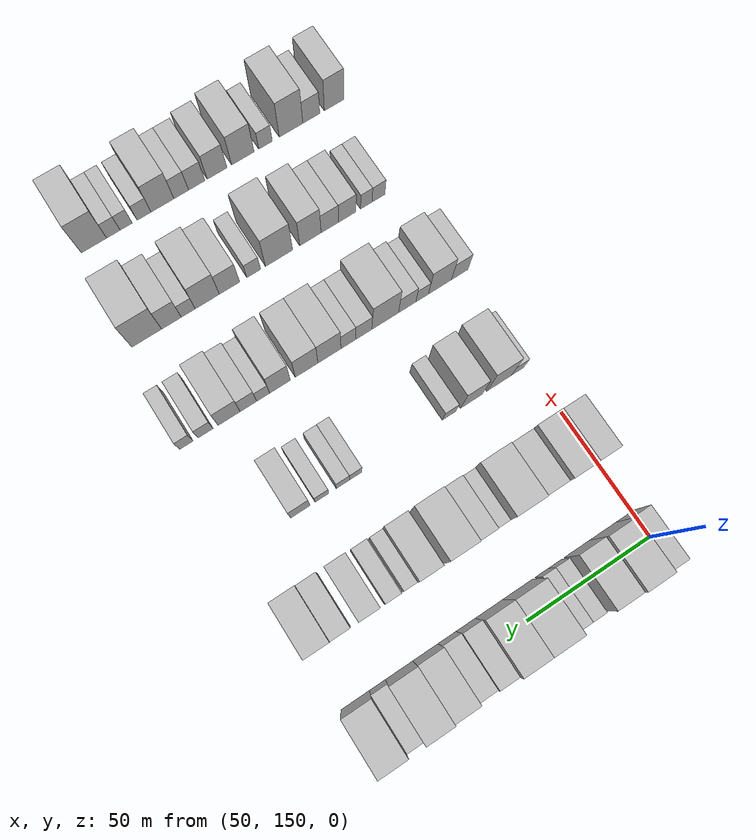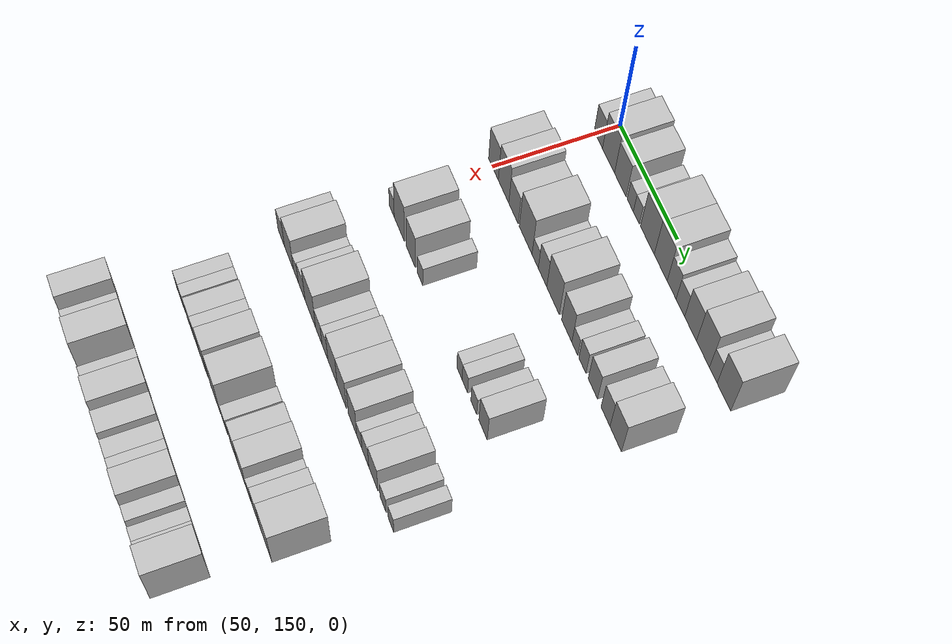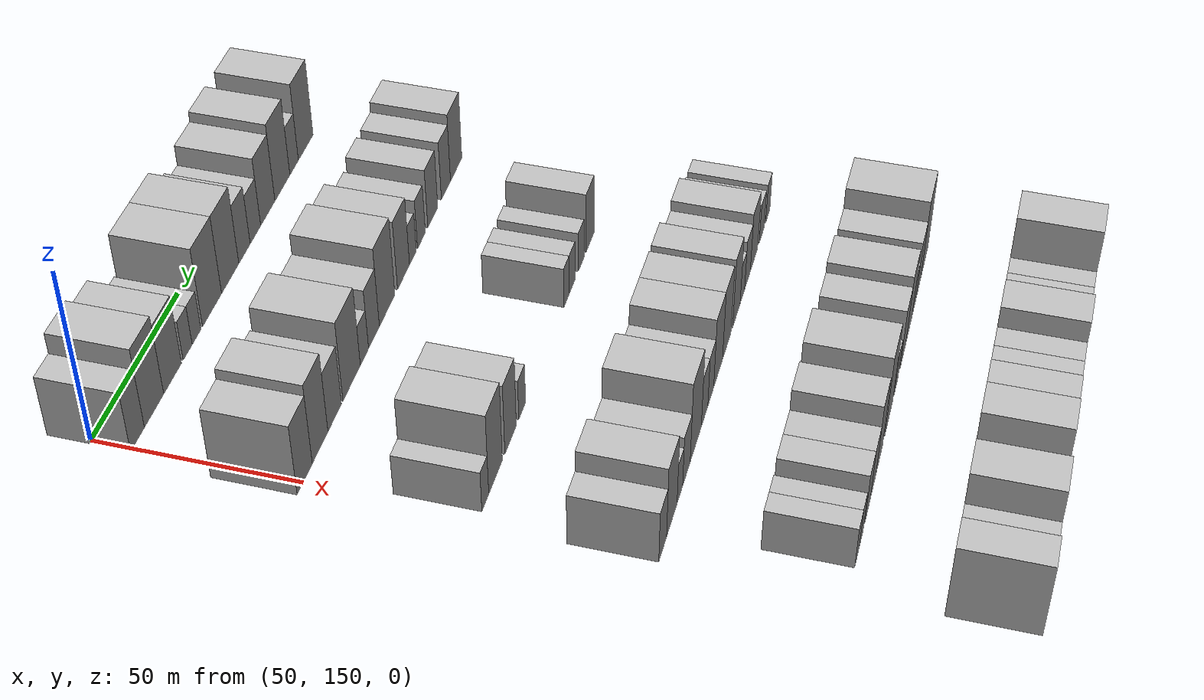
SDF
<sdf version="1.6">
 <world name="default">
  <model name="building_84">
   <static>1</static>
   <pose>50.0000 152.7895 0 0.000000 0.000000 0.000000</pose>
   <link name="link">
    <pose>0 0 9.00 0 0 0</pose>
    <collision name="collision"><geometry><box><size>20.0000 7.6728 18.0000</size></box></geometry></collision>
    <visual name="visual">
     <cast_shadows>0</cast_shadows>
     <geometry><box><size>20.0000 7.6728 18.0000</size></box></geometry>
     <material>
      <script>
       <uri>model://HANNAS_wall/materials/scripts</uri>
       <uri>model://HANNAS_wall/materials/textures</uri>
       <name>vrc/HANNAS_wall</name>
      </script>
     </material>
    </visual>
   </link>
  </model>
  <model name="building_85">
   <static>1</static>
   <pose>50.0000 162.0915 0 0.000000 0.000000 0.000000</pose>
   <link name="link">
    <pose>0 0 12.00 0 0 0</pose>
    <collision name="collision"><geometry><box><size>20.0000 10.9312 24.0000</size></box></geometry></collision>
    <visual name="visual">
     <cast_shadows>0</cast_shadows>
     <geometry><box><size>20.0000 10.9312 24.0000</size></box></geometry>
     <material>
      <script>
       <uri>model://HANNAS_wall/materials/scripts</uri>
       <uri>model://HANNAS_wall/materials/textures</uri>
       <name>vrc/HANNAS_wall</name>
      </script>
     </material>
    </visual>
   </link>
  </model>
  <model name="building_86">
   <static>1</static>
   <pose>50.0000 172.7237 0 0.000000 0.000000 0.000000</pose>
   <link name="link">
    <pose>0 0 10.50 0 0 0</pose>
    <collision name="collision"><geometry><box><size>20.0000 10.3332 21.0000</size></box></geometry></collision>
    <visual name="visual">
     <cast_shadows>0</cast_shadows>
     <geometry><box><size>20.0000 10.3332 21.0000</size></box></geometry>
     <material>
      <script>
       <uri>model://HANNAS_wall/materials/scripts</uri>
       <uri>model://HANNAS_wall/materials/textures</uri>
       <name>vrc/HANNAS_wall</name>
      </script>
     </material>
    </visual>
   </link>
  </model>
  <model name="building_87">
   <static>1</static>
   <pose>50.0000 181.6110 0 0.000000 0.000000 0.000000</pose>
   <link name="link">
    <pose>0 0 6.00 0 0 0</pose>
    <collision name="collision"><geometry><box><size>20.0000 5.4416 12.0000</size></box></geometry></collision>
    <visual name="visual">
     <cast_shadows>0</cast_shadows>
     <geometry><box><size>20.0000 5.4416 12.0000</size></box></geometry>
     <material>
      <script>
       <uri>model://HANNAS_wall/materials/scripts</uri>
       <uri>model://HANNAS_wall/materials/textures</uri>
       <name>vrc/HANNAS_wall</name>
      </script>
     </material>
    </visual>
   </link>
  </model>
  <model name="building_88">
   <static>1</static>
   <pose>50.0000 186.9687 0 0.000000 0.000000 0.000000</pose>
   <link name="link">
    <pose>0 0 6.00 0 0 0</pose>
    <collision name="collision"><geometry><box><size>20.0000 5.2737 12.0000</size></box></geometry></collision>
    <visual name="visual">
     <cast_shadows>0</cast_shadows>
     <geometry><box><size>20.0000 5.2737 12.0000</size></box></geometry>
     <material>
      <script>
       <uri>model://HANNAS_wall/materials/scripts</uri>
       <uri>model://HANNAS_wall/materials/textures</uri>
       <name>vrc/HANNAS_wall</name>
      </script>
     </material>
    </visual>
   </link>
  </model>
  <model name="building_89">
   <static>1</static>
   <pose>50.0000 196.5777 0 0.000000 0.000000 0.000000</pose>
   <link name="link">
    <pose>0 0 12.00 0 0 0</pose>
    <collision name="collision"><geometry><box><size>20.0000 11.9444 24.0000</size></box></geometry></collision>
    <visual name="visual">
     <cast_shadows>0</cast_shadows>
     <geometry><box><size>20.0000 11.9444 24.0000</size></box></geometry>
     <material>
      <script>
       <uri>model://HANNAS_wall/materials/scripts</uri>
       <uri>model://HANNAS_wall/materials/textures</uri>
       <name>vrc/HANNAS_wall</name>
      </script>
     </material>
    </visual>
   </link>
  </model>
  <model name="building_90">
   <static>1</static>
   <pose>50.0000 208.0871 0 0.000000 0.000000 0.000000</pose>
   <link name="link">
    <pose>0 0 12.00 0 0 0</pose>
    <collision name="collision"><geometry><box><size>20.0000 11.0743 24.0000</size></box></geometry></collision>
    <visual name="visual">
     <cast_shadows>0</cast_shadows>
     <geometry><box><size>20.0000 11.0743 24.0000</size></box></geometry>
     <material>
      <script>
       <uri>model://HANNAS_wall/materials/scripts</uri>
       <uri>model://HANNAS_wall/materials/textures</uri>
       <name>vrc/HANNAS_wall</name>
      </script>
     </material>
    </visual>
   </link>
  </model>
  <model name="building_91">
   <static>1</static>
   <pose>50.0000 217.3788 0 0.000000 0.000000 0.000000</pose>
   <link name="link">
    <pose>0 0 9.00 0 0 0</pose>
    <collision name="collision"><geometry><box><size>20.0000 7.5092 18.0000</size></box></geometry></collision>
    <visual name="visual">
     <cast_shadows>0</cast_shadows>
     <geometry><box><size>20.0000 7.5092 18.0000</size></box></geometry>
     <material>
      <script>
       <uri>model://HANNAS_wall/materials/scripts</uri>
       <uri>model://HANNAS_wall/materials/textures</uri>
       <name>vrc/HANNAS_wall</name>
      </script>
     </material>
    </visual>
   </link>
  </model>
  <model name="building_92">
   <static>1</static>
   <pose>50.0000 224.6886 0 0.000000 0.000000 0.000000</pose>
   <link name="link">
    <pose>0 0 7.50 0 0 0</pose>
    <collision name="collision"><geometry><box><size>20.0000 7.1102 15.0000</size></box></geometry></collision>
    <visual name="visual">
     <cast_shadows>0</cast_shadows>
     <geometry><box><size>20.0000 7.1102 15.0000</size></box></geometry>
     <material>
      <script>
       <uri>model://HANNAS_wall/materials/scripts</uri>
       <uri>model://HANNAS_wall/materials/textures</uri>
       <name>vrc/HANNAS_wall</name>
      </script>
     </material>
    </visual>
   </link>
  </model>
  <model name="building_93">
   <static>1</static>
   <pose>50.0000 233.1291 0 0.000000 0.000000 0.000000</pose>
   <link name="link">
    <pose>0 0 10.50 0 0 0</pose>
    <collision name="collision"><geometry><box><size>20.0000 9.7709 21.0000</size></box></geometry></collision>
    <visual name="visual">
     <cast_shadows>0</cast_shadows>
     <geometry><box><size>20.0000 9.7709 21.0000</size></box></geometry>
     <material>
      <script>
       <uri>model://HANNAS_wall/materials/scripts</uri>
       <uri>model://HANNAS_wall/materials/textures</uri>
       <name>vrc/HANNAS_wall</name>
      </script>
     </material>
    </visual>
   </link>
  </model>
  <model name="building_94">
   <static>1</static>
   <pose>50.0000 243.3076 0 0.000000 0.000000 0.000000</pose>
   <link name="link">
    <pose>0 0 12.00 0 0 0</pose>
    <collision name="collision"><geometry><box><size>20.0000 10.5861 24.0000</size></box></geometry></collision>
    <visual name="visual">
     <cast_shadows>0</cast_shadows>
     <geometry><box><size>20.0000 10.5861 24.0000</size></box></geometry>
     <material>
      <script>
       <uri>model://HANNAS_wall/materials/scripts</uri>
       <uri>model://HANNAS_wall/materials/textures</uri>
       <name>vrc/HANNAS_wall</name>
      </script>
     </material>
    </visual>
   </link>
  </model>
  <model name="building_95">
   <static>1</static>
   <pose>50.0000 251.6671 0 0.000000 0.000000 0.000000</pose>
   <link name="link">
    <pose>0 0 7.50 0 0 0</pose>
    <collision name="collision"><geometry><box><size>20.0000 6.1329 15.0000</size></box></geometry></collision>
    <visual name="visual">
     <cast_shadows>0</cast_shadows>
     <geometry><box><size>20.0000 6.1329 15.0000</size></box></geometry>
     <material>
      <script>
       <uri>model://HANNAS_wall/materials/scripts</uri>
       <uri>model://HANNAS_wall/materials/textures</uri>
       <name>vrc/HANNAS_wall</name>
      </script>
     </material>
    </visual>
   </link>
  </model>
  <model name="building_96">
   <static>1</static>
   <pose>50.0000 260.1546 0 0.000000 0.000000 0.000000</pose>
   <link name="link">
    <pose>0 0 12.00 0 0 0</pose>
    <collision name="collision"><geometry><box><size>20.0000 10.8420 24.0000</size></box></geometry></collision>
    <visual name="visual">
     <cast_shadows>0</cast_shadows>
     <geometry><box><size>20.0000 10.8420 24.0000</size></box></geometry>
     <material>
      <script>
       <uri>model://HANNAS_wall/materials/scripts</uri>
       <uri>model://HANNAS_wall/materials/textures</uri>
       <name>vrc/HANNAS_wall</name>
      </script>
     </material>
    </visual>
   </link>
  </model>
  <model name="building_215">
   <static>1</static>
   <pose>90.0000 151.0080 0 0.000000 0.000000 0.000000</pose>
   <link name="link">
    <pose>0 0 10.50 0 0 0</pose>
    <collision name="collision"><geometry><box><size>20.0000 9.5151 21.0000</size></box></geometry></collision>
    <visual name="visual">
     <cast_shadows>0</cast_shadows>
     <geometry><box><size>20.0000 9.5151 21.0000</size></box></geometry>
     <material>
      <script>
       <uri>model://HANNAS_wall/materials/scripts</uri>
       <uri>model://HANNAS_wall/materials/textures</uri>
       <name>vrc/HANNAS_wall</name>
      </script>
     </material>
    </visual>
   </link>
  </model>
  <model name="building_216">
   <static>1</static>
   <pose>90.0000 160.8069 0 0.000000 0.000000 0.000000</pose>
   <link name="link">
    <pose>0 0 12.00 0 0 0</pose>
    <collision name="collision"><geometry><box><size>20.0000 10.0829 24.0000</size></box></geometry></collision>
    <visual name="visual">
     <cast_shadows>0</cast_shadows>
     <geometry><box><size>20.0000 10.0829 24.0000</size></box></geometry>
     <material>
      <script>
       <uri>model://HANNAS_wall/materials/scripts</uri>
       <uri>model://HANNAS_wall/materials/textures</uri>
       <name>vrc/HANNAS_wall</name>
      </script>
     </material>
    </visual>
   </link>
  </model>
  <model name="building_217">
   <static>1</static>
   <pose>90.0000 170.3134 0 0.000000 0.000000 0.000000</pose>
   <link name="link">
    <pose>0 0 9.00 0 0 0</pose>
    <collision name="collision"><geometry><box><size>20.0000 8.9300 18.0000</size></box></geometry></collision>
    <visual name="visual">
     <cast_shadows>0</cast_shadows>
     <geometry><box><size>20.0000 8.9300 18.0000</size></box></geometry>
     <material>
      <script>
       <uri>model://HANNAS_wall/materials/scripts</uri>
       <uri>model://HANNAS_wall/materials/textures</uri>
       <name>vrc/HANNAS_wall</name>
      </script>
     </material>
    </visual>
   </link>
  </model>
  <model name="building_218">
   <static>1</static>
   <pose>90.0000 181.7432 0 0.000000 0.000000 0.000000</pose>
   <link name="link">
    <pose>0 0 12.00 0 0 0</pose>
    <collision name="collision"><geometry><box><size>20.0000 11.9295 24.0000</size></box></geometry></collision>
    <visual name="visual">
     <cast_shadows>0</cast_shadows>
     <geometry><box><size>20.0000 11.9295 24.0000</size></box></geometry>
     <material>
      <script>
       <uri>model://HANNAS_wall/materials/scripts</uri>
       <uri>model://HANNAS_wall/materials/textures</uri>
       <name>vrc/HANNAS_wall</name>
      </script>
     </material>
    </visual>
   </link>
  </model>
  <model name="building_219">
   <static>1</static>
   <pose>90.0000 190.5993 0 0.000000 0.000000 0.000000</pose>
   <link name="link">
    <pose>0 0 6.00 0 0 0</pose>
    <collision name="collision"><geometry><box><size>20.0000 5.7827 12.0000</size></box></geometry></collision>
    <visual name="visual">
     <cast_shadows>0</cast_shadows>
     <geometry><box><size>20.0000 5.7827 12.0000</size></box></geometry>
     <material>
      <script>
       <uri>model://HANNAS_wall/materials/scripts</uri>
       <uri>model://HANNAS_wall/materials/textures</uri>
       <name>vrc/HANNAS_wall</name>
      </script>
     </material>
    </visual>
   </link>
  </model>
  <model name="building_220">
   <static>1</static>
   <pose>90.0000 197.3657 0 0.000000 0.000000 0.000000</pose>
   <link name="link">
    <pose>0 0 9.00 0 0 0</pose>
    <collision name="collision"><geometry><box><size>20.0000 7.7499 18.0000</size></box></geometry></collision>
    <visual name="visual">
     <cast_shadows>0</cast_shadows>
     <geometry><box><size>20.0000 7.7499 18.0000</size></box></geometry>
     <material>
      <script>
       <uri>model://HANNAS_wall/materials/scripts</uri>
       <uri>model://HANNAS_wall/materials/textures</uri>
       <name>vrc/HANNAS_wall</name>
      </script>
     </material>
    </visual>
   </link>
  </model>
  <model name="building_221">
   <static>1</static>
   <pose>90.0000 206.9236 0 0.000000 0.000000 0.000000</pose>
   <link name="link">
    <pose>0 0 12.00 0 0 0</pose>
    <collision name="collision"><geometry><box><size>20.0000 11.3661 24.0000</size></box></geometry></collision>
    <visual name="visual">
     <cast_shadows>0</cast_shadows>
     <geometry><box><size>20.0000 11.3661 24.0000</size></box></geometry>
     <material>
      <script>
       <uri>model://HANNAS_wall/materials/scripts</uri>
       <uri>model://HANNAS_wall/materials/textures</uri>
       <name>vrc/HANNAS_wall</name>
      </script>
     </material>
    </visual>
   </link>
  </model>
  <model name="building_222">
   <static>1</static>
   <pose>90.0000 219.1638 0 0.000000 0.000000 0.000000</pose>
   <link name="link">
    <pose>0 0 10.50 0 0 0</pose>
    <collision name="collision"><geometry><box><size>20.0000 9.1143 21.0000</size></box></geometry></collision>
    <visual name="visual">
     <cast_shadows>0</cast_shadows>
     <geometry><box><size>20.0000 9.1143 21.0000</size></box></geometry>
     <material>
      <script>
       <uri>model://HANNAS_wall/materials/scripts</uri>
       <uri>model://HANNAS_wall/materials/textures</uri>
       <name>vrc/HANNAS_wall</name>
      </script>
     </material>
    </visual>
   </link>
  </model>
  <model name="building_223">
   <static>1</static>
   <pose>90.0000 226.3269 0 0.000000 0.000000 0.000000</pose>
   <link name="link">
    <pose>0 0 6.00 0 0 0</pose>
    <collision name="collision"><geometry><box><size>20.0000 5.2120 12.0000</size></box></geometry></collision>
    <visual name="visual">
     <cast_shadows>0</cast_shadows>
     <geometry><box><size>20.0000 5.2120 12.0000</size></box></geometry>
     <material>
      <script>
       <uri>model://HANNAS_wall/materials/scripts</uri>
       <uri>model://HANNAS_wall/materials/textures</uri>
       <name>vrc/HANNAS_wall</name>
      </script>
     </material>
    </visual>
   </link>
  </model>
  <model name="building_224">
   <static>1</static>
   <pose>90.0000 232.9995 0 0.000000 0.000000 0.000000</pose>
   <link name="link">
    <pose>0 0 7.50 0 0 0</pose>
    <collision name="collision"><geometry><box><size>20.0000 6.1333 15.0000</size></box></geometry></collision>
    <visual name="visual">
     <cast_shadows>0</cast_shadows>
     <geometry><box><size>20.0000 6.1333 15.0000</size></box></geometry>
     <material>
      <script>
       <uri>model://HANNAS_wall/materials/scripts</uri>
       <uri>model://HANNAS_wall/materials/textures</uri>
       <name>vrc/HANNAS_wall</name>
      </script>
     </material>
    </visual>
   </link>
  </model>
  <model name="building_225">
   <static>1</static>
   <pose>90.0000 242.0685 0 0.000000 0.000000 0.000000</pose>
   <link name="link">
    <pose>0 0 9.00 0 0 0</pose>
    <collision name="collision"><geometry><box><size>20.0000 8.0046 18.0000</size></box></geometry></collision>
    <visual name="visual">
     <cast_shadows>0</cast_shadows>
     <geometry><box><size>20.0000 8.0046 18.0000</size></box></geometry>
     <material>
      <script>
       <uri>model://HANNAS_wall/materials/scripts</uri>
       <uri>model://HANNAS_wall/materials/textures</uri>
       <name>vrc/HANNAS_wall</name>
      </script>
     </material>
    </visual>
   </link>
  </model>
  <model name="building_226">
   <static>1</static>
   <pose>90.0000 252.8463 0 0.000000 0.000000 0.000000</pose>
   <link name="link">
    <pose>0 0 9.00 0 0 0</pose>
    <collision name="collision"><geometry><box><size>20.0000 7.5509 18.0000</size></box></geometry></collision>
    <visual name="visual">
     <cast_shadows>0</cast_shadows>
     <geometry><box><size>20.0000 7.5509 18.0000</size></box></geometry>
     <material>
      <script>
       <uri>model://HANNAS_wall/materials/scripts</uri>
       <uri>model://HANNAS_wall/materials/textures</uri>
       <name>vrc/HANNAS_wall</name>
      </script>
     </material>
    </visual>
   </link>
  </model>
  <model name="building_227">
   <static>1</static>
   <pose>90.0000 261.4217 0 0.000000 0.000000 0.000000</pose>
   <link name="link">
    <pose>0 0 10.50 0 0 0</pose>
    <collision name="collision"><geometry><box><size>20.0000 9.6000 21.0000</size></box></geometry></collision>
    <visual name="visual">
     <cast_shadows>0</cast_shadows>
     <geometry><box><size>20.0000 9.6000 21.0000</size></box></geometry>
     <material>
      <script>
       <uri>model://HANNAS_wall/materials/scripts</uri>
       <uri>model://HANNAS_wall/materials/textures</uri>
       <name>vrc/HANNAS_wall</name>
      </script>
     </material>
    </visual>
   </link>
  </model>
  <model name="building_350">
   <static>1</static>
   <pose>130.0000 154.3671 0 0.000000 0.000000 0.000000</pose>
   <link name="link">
    <pose>0 0 6.00 0 0 0</pose>
    <collision name="collision"><geometry><box><size>20.0000 5.1504 12.0000</size></box></geometry></collision>
    <visual name="visual">
     <cast_shadows>0</cast_shadows>
     <geometry><box><size>20.0000 5.1504 12.0000</size></box></geometry>
     <material>
      <script>
       <uri>model://HANNAS_wall/materials/scripts</uri>
       <uri>model://HANNAS_wall/materials/textures</uri>
       <name>vrc/HANNAS_wall</name>
      </script>
     </material>
    </visual>
   </link>
  </model>
  <model name="building_351">
   <static>1</static>
   <pose>130.0000 162.1088 0 0.000000 0.000000 0.000000</pose>
   <link name="link">
    <pose>0 0 12.00 0 0 0</pose>
    <collision name="collision"><geometry><box><size>20.0000 10.3330 24.0000</size></box></geometry></collision>
    <visual name="visual">
     <cast_shadows>0</cast_shadows>
     <geometry><box><size>20.0000 10.3330 24.0000</size></box></geometry>
     <material>
      <script>
       <uri>model://HANNAS_wall/materials/scripts</uri>
       <uri>model://HANNAS_wall/materials/textures</uri>
       <name>vrc/HANNAS_wall</name>
      </script>
     </material>
    </visual>
   </link>
  </model>
  <model name="building_352">
   <static>1</static>
   <pose>130.0000 173.7810 0 0.000000 0.000000 0.000000</pose>
   <link name="link">
    <pose>0 0 10.50 0 0 0</pose>
    <collision name="collision"><geometry><box><size>20.0000 9.0114 21.0000</size></box></geometry></collision>
    <visual name="visual">
     <cast_shadows>0</cast_shadows>
     <geometry><box><size>20.0000 9.0114 21.0000</size></box></geometry>
     <material>
      <script>
       <uri>model://HANNAS_wall/materials/scripts</uri>
       <uri>model://HANNAS_wall/materials/textures</uri>
       <name>vrc/HANNAS_wall</name>
      </script>
     </material>
    </visual>
   </link>
  </model>
  <model name="building_353">
   <static>1</static>
   <pose>130.0000 183.0445 0 0.000000 0.000000 0.000000</pose>
   <link name="link">
    <pose>0 0 6.00 0 0 0</pose>
    <collision name="collision"><geometry><box><size>20.0000 5.5156 12.0000</size></box></geometry></collision>
    <visual name="visual">
     <cast_shadows>0</cast_shadows>
     <geometry><box><size>20.0000 5.5156 12.0000</size></box></geometry>
     <material>
      <script>
       <uri>model://HANNAS_wall/materials/scripts</uri>
       <uri>model://HANNAS_wall/materials/textures</uri>
       <name>vrc/HANNAS_wall</name>
      </script>
     </material>
    </visual>
   </link>
  </model>
  <model name="building_354">
   <static>1</static>
   <pose>130.0000 221.1294 0 0.000000 0.000000 0.000000</pose>
   <link name="link">
    <pose>0 0 6.00 0 0 0</pose>
    <collision name="collision"><geometry><box><size>20.0000 4.8847 12.0000</size></box></geometry></collision>
    <visual name="visual">
     <cast_shadows>0</cast_shadows>
     <geometry><box><size>20.0000 4.8847 12.0000</size></box></geometry>
     <material>
      <script>
       <uri>model://HANNAS_wall/materials/scripts</uri>
       <uri>model://HANNAS_wall/materials/textures</uri>
       <name>vrc/HANNAS_wall</name>
      </script>
     </material>
    </visual>
   </link>
  </model>
  <model name="building_355">
   <static>1</static>
   <pose>130.0000 226.1993 0 0.000000 0.000000 0.000000</pose>
   <link name="link">
    <pose>0 0 6.00 0 0 0</pose>
    <collision name="collision"><geometry><box><size>20.0000 5.2551 12.0000</size></box></geometry></collision>
    <visual name="visual">
     <cast_shadows>0</cast_shadows>
     <geometry><box><size>20.0000 5.2551 12.0000</size></box></geometry>
     <material>
      <script>
       <uri>model://HANNAS_wall/materials/scripts</uri>
       <uri>model://HANNAS_wall/materials/textures</uri>
       <name>vrc/HANNAS_wall</name>
      </script>
     </material>
    </visual>
   </link>
  </model>
  <model name="building_356">
   <static>1</static>
   <pose>130.0000 234.5240 0 0.000000 0.000000 0.000000</pose>
   <link name="link">
    <pose>0 0 6.00 0 0 0</pose>
    <collision name="collision"><geometry><box><size>20.0000 5.3943 12.0000</size></box></geometry></collision>
    <visual name="visual">
     <cast_shadows>0</cast_shadows>
     <geometry><box><size>20.0000 5.3943 12.0000</size></box></geometry>
     <material>
      <script>
       <uri>model://HANNAS_wall/materials/scripts</uri>
       <uri>model://HANNAS_wall/materials/textures</uri>
       <name>vrc/HANNAS_wall</name>
      </script>
     </material>
    </visual>
   </link>
  </model>
  <model name="building_357">
   <static>1</static>
   <pose>130.0000 243.0186 0 0.000000 0.000000 0.000000</pose>
   <link name="link">
    <pose>0 0 9.00 0 0 0</pose>
    <collision name="collision"><geometry><box><size>20.0000 7.5949 18.0000</size></box></geometry></collision>
    <visual name="visual">
     <cast_shadows>0</cast_shadows>
     <geometry><box><size>20.0000 7.5949 18.0000</size></box></geometry>
     <material>
      <script>
       <uri>model://HANNAS_wall/materials/scripts</uri>
       <uri>model://HANNAS_wall/materials/textures</uri>
       <name>vrc/HANNAS_wall</name>
      </script>
     </material>
    </visual>
   </link>
  </model>
  <model name="building_483">
   <static>1</static>
   <pose>170.0000 151.1992 0 0.000000 0.000000 0.000000</pose>
   <link name="link">
    <pose>0 0 7.50 0 0 0</pose>
    <collision name="collision"><geometry><box><size>20.0000 7.0989 15.0000</size></box></geometry></collision>
    <visual name="visual">
     <cast_shadows>0</cast_shadows>
     <geometry><box><size>20.0000 7.0989 15.0000</size></box></geometry>
     <material>
      <script>
       <uri>model://HANNAS_wall/materials/scripts</uri>
       <uri>model://HANNAS_wall/materials/textures</uri>
       <name>vrc/HANNAS_wall</name>
      </script>
     </material>
    </visual>
   </link>
  </model>
  <model name="building_484">
   <static>1</static>
   <pose>170.0000 159.6566 0 0.000000 0.000000 0.000000</pose>
   <link name="link">
    <pose>0 0 10.50 0 0 0</pose>
    <collision name="collision"><geometry><box><size>20.0000 9.8159 21.0000</size></box></geometry></collision>
    <visual name="visual">
     <cast_shadows>0</cast_shadows>
     <geometry><box><size>20.0000 9.8159 21.0000</size></box></geometry>
     <material>
      <script>
       <uri>model://HANNAS_wall/materials/scripts</uri>
       <uri>model://HANNAS_wall/materials/textures</uri>
       <name>vrc/HANNAS_wall</name>
      </script>
     </material>
    </visual>
   </link>
  </model>
  <model name="building_485">
   <static>1</static>
   <pose>170.0000 167.2334 0 0.000000 0.000000 0.000000</pose>
   <link name="link">
    <pose>0 0 6.00 0 0 0</pose>
    <collision name="collision"><geometry><box><size>20.0000 5.3376 12.0000</size></box></geometry></collision>
    <visual name="visual">
     <cast_shadows>0</cast_shadows>
     <geometry><box><size>20.0000 5.3376 12.0000</size></box></geometry>
     <material>
      <script>
       <uri>model://HANNAS_wall/materials/scripts</uri>
       <uri>model://HANNAS_wall/materials/textures</uri>
       <name>vrc/HANNAS_wall</name>
      </script>
     </material>
    </visual>
   </link>
  </model>
  <model name="building_486">
   <static>1</static>
   <pose>170.0000 173.5665 0 0.000000 0.000000 0.000000</pose>
   <link name="link">
    <pose>0 0 7.50 0 0 0</pose>
    <collision name="collision"><geometry><box><size>20.0000 7.3286 15.0000</size></box></geometry></collision>
    <visual name="visual">
     <cast_shadows>0</cast_shadows>
     <geometry><box><size>20.0000 7.3286 15.0000</size></box></geometry>
     <material>
      <script>
       <uri>model://HANNAS_wall/materials/scripts</uri>
       <uri>model://HANNAS_wall/materials/textures</uri>
       <name>vrc/HANNAS_wall</name>
      </script>
     </material>
    </visual>
   </link>
  </model>
  <model name="building_487">
   <static>1</static>
   <pose>170.0000 182.8272 0 0.000000 0.000000 0.000000</pose>
   <link name="link">
    <pose>0 0 12.00 0 0 0</pose>
    <collision name="collision"><geometry><box><size>20.0000 11.1930 24.0000</size></box></geometry></collision>
    <visual name="visual">
     <cast_shadows>0</cast_shadows>
     <geometry><box><size>20.0000 11.1930 24.0000</size></box></geometry>
     <material>
      <script>
       <uri>model://HANNAS_wall/materials/scripts</uri>
       <uri>model://HANNAS_wall/materials/textures</uri>
       <name>vrc/HANNAS_wall</name>
      </script>
     </material>
    </visual>
   </link>
  </model>
  <model name="building_488">
   <static>1</static>
   <pose>170.0000 191.7656 0 0.000000 0.000000 0.000000</pose>
   <link name="link">
    <pose>0 0 7.50 0 0 0</pose>
    <collision name="collision"><geometry><box><size>20.0000 6.6837 15.0000</size></box></geometry></collision>
    <visual name="visual">
     <cast_shadows>0</cast_shadows>
     <geometry><box><size>20.0000 6.6837 15.0000</size></box></geometry>
     <material>
      <script>
       <uri>model://HANNAS_wall/materials/scripts</uri>
       <uri>model://HANNAS_wall/materials/textures</uri>
       <name>vrc/HANNAS_wall</name>
      </script>
     </material>
    </visual>
   </link>
  </model>
  <model name="building_489">
   <static>1</static>
   <pose>170.0000 198.1848 0 0.000000 0.000000 0.000000</pose>
   <link name="link">
    <pose>0 0 7.50 0 0 0</pose>
    <collision name="collision"><geometry><box><size>20.0000 6.1548 15.0000</size></box></geometry></collision>
    <visual name="visual">
     <cast_shadows>0</cast_shadows>
     <geometry><box><size>20.0000 6.1548 15.0000</size></box></geometry>
     <material>
      <script>
       <uri>model://HANNAS_wall/materials/scripts</uri>
       <uri>model://HANNAS_wall/materials/textures</uri>
       <name>vrc/HANNAS_wall</name>
      </script>
     </material>
    </visual>
   </link>
  </model>
  <model name="building_490">
   <static>1</static>
   <pose>170.0000 205.9907 0 0.000000 0.000000 0.000000</pose>
   <link name="link">
    <pose>0 0 10.50 0 0 0</pose>
    <collision name="collision"><geometry><box><size>20.0000 9.4568 21.0000</size></box></geometry></collision>
    <visual name="visual">
     <cast_shadows>0</cast_shadows>
     <geometry><box><size>20.0000 9.4568 21.0000</size></box></geometry>
     <material>
      <script>
       <uri>model://HANNAS_wall/materials/scripts</uri>
       <uri>model://HANNAS_wall/materials/textures</uri>
       <name>vrc/HANNAS_wall</name>
      </script>
     </material>
    </visual>
   </link>
  </model>
  <model name="building_491">
   <static>1</static>
   <pose>170.0000 215.3487 0 0.000000 0.000000 0.000000</pose>
   <link name="link">
    <pose>0 0 10.50 0 0 0</pose>
    <collision name="collision"><geometry><box><size>20.0000 9.2592 21.0000</size></box></geometry></collision>
    <visual name="visual">
     <cast_shadows>0</cast_shadows>
     <geometry><box><size>20.0000 9.2592 21.0000</size></box></geometry>
     <material>
      <script>
       <uri>model://HANNAS_wall/materials/scripts</uri>
       <uri>model://HANNAS_wall/materials/textures</uri>
       <name>vrc/HANNAS_wall</name>
      </script>
     </material>
    </visual>
   </link>
  </model>
  <model name="building_492">
   <static>1</static>
   <pose>170.0000 226.1792 0 0.000000 0.000000 0.000000</pose>
   <link name="link">
    <pose>0 0 10.50 0 0 0</pose>
    <collision name="collision"><geometry><box><size>20.0000 8.4018 21.0000</size></box></geometry></collision>
    <visual name="visual">
     <cast_shadows>0</cast_shadows>
     <geometry><box><size>20.0000 8.4018 21.0000</size></box></geometry>
     <material>
      <script>
       <uri>model://HANNAS_wall/materials/scripts</uri>
       <uri>model://HANNAS_wall/materials/textures</uri>
       <name>vrc/HANNAS_wall</name>
      </script>
     </material>
    </visual>
   </link>
  </model>
  <model name="building_493">
   <static>1</static>
   <pose>170.0000 232.9709 0 0.000000 0.000000 0.000000</pose>
   <link name="link">
    <pose>0 0 6.00 0 0 0</pose>
    <collision name="collision"><geometry><box><size>20.0000 5.1815 12.0000</size></box></geometry></collision>
    <visual name="visual">
     <cast_shadows>0</cast_shadows>
     <geometry><box><size>20.0000 5.1815 12.0000</size></box></geometry>
     <material>
      <script>
       <uri>model://HANNAS_wall/materials/scripts</uri>
       <uri>model://HANNAS_wall/materials/textures</uri>
       <name>vrc/HANNAS_wall</name>
      </script>
     </material>
    </visual>
   </link>
  </model>
  <model name="building_494">
   <static>1</static>
   <pose>170.0000 238.8880 0 0.000000 0.000000 0.000000</pose>
   <link name="link">
    <pose>0 0 7.50 0 0 0</pose>
    <collision name="collision"><geometry><box><size>20.0000 6.6527 15.0000</size></box></geometry></collision>
    <visual name="visual">
     <cast_shadows>0</cast_shadows>
     <geometry><box><size>20.0000 6.6527 15.0000</size></box></geometry>
     <material>
      <script>
       <uri>model://HANNAS_wall/materials/scripts</uri>
       <uri>model://HANNAS_wall/materials/textures</uri>
       <name>vrc/HANNAS_wall</name>
      </script>
     </material>
    </visual>
   </link>
  </model>
  <model name="building_495">
   <static>1</static>
   <pose>170.0000 246.6046 0 0.000000 0.000000 0.000000</pose>
   <link name="link">
    <pose>0 0 9.00 0 0 0</pose>
    <collision name="collision"><geometry><box><size>20.0000 8.7805 18.0000</size></box></geometry></collision>
    <visual name="visual">
     <cast_shadows>0</cast_shadows>
     <geometry><box><size>20.0000 8.7805 18.0000</size></box></geometry>
     <material>
      <script>
       <uri>model://HANNAS_wall/materials/scripts</uri>
       <uri>model://HANNAS_wall/materials/textures</uri>
       <name>vrc/HANNAS_wall</name>
      </script>
     </material>
    </visual>
   </link>
  </model>
  <model name="building_496">
   <static>1</static>
   <pose>170.0000 255.9664 0 0.000000 0.000000 0.000000</pose>
   <link name="link">
    <pose>0 0 6.00 0 0 0</pose>
    <collision name="collision"><geometry><box><size>20.0000 5.9431 12.0000</size></box></geometry></collision>
    <visual name="visual">
     <cast_shadows>0</cast_shadows>
     <geometry><box><size>20.0000 5.9431 12.0000</size></box></geometry>
     <material>
      <script>
       <uri>model://HANNAS_wall/materials/scripts</uri>
       <uri>model://HANNAS_wall/materials/textures</uri>
       <name>vrc/HANNAS_wall</name>
      </script>
     </material>
    </visual>
   </link>
  </model>
  <model name="building_497">
   <static>1</static>
   <pose>170.0000 263.5402 0 0.000000 0.000000 0.000000</pose>
   <link name="link">
    <pose>0 0 6.00 0 0 0</pose>
    <collision name="collision"><geometry><box><size>20.0000 5.2046 12.0000</size></box></geometry></collision>
    <visual name="visual">
     <cast_shadows>0</cast_shadows>
     <geometry><box><size>20.0000 5.2046 12.0000</size></box></geometry>
     <material>
      <script>
       <uri>model://HANNAS_wall/materials/scripts</uri>
       <uri>model://HANNAS_wall/materials/textures</uri>
       <name>vrc/HANNAS_wall</name>
      </script>
     </material>
    </visual>
   </link>
  </model>
  <model name="building_620">
   <static>1</static>
   <pose>210.0000 159.3536 0 0.000000 0.000000 0.000000</pose>
   <link name="link">
    <pose>0 0 6.00 0 0 0</pose>
    <collision name="collision"><geometry><box><size>20.0000 5.5548 12.0000</size></box></geometry></collision>
    <visual name="visual">
     <cast_shadows>0</cast_shadows>
     <geometry><box><size>20.0000 5.5548 12.0000</size></box></geometry>
     <material>
      <script>
       <uri>model://HANNAS_wall/materials/scripts</uri>
       <uri>model://HANNAS_wall/materials/textures</uri>
       <name>vrc/HANNAS_wall</name>
      </script>
     </material>
    </visual>
   </link>
  </model>
  <model name="building_621">
   <static>1</static>
   <pose>210.0000 164.6128 0 0.000000 0.000000 0.000000</pose>
   <link name="link">
    <pose>0 0 6.00 0 0 0</pose>
    <collision name="collision"><geometry><box><size>20.0000 4.9635 12.0000</size></box></geometry></collision>
    <visual name="visual">
     <cast_shadows>0</cast_shadows>
     <geometry><box><size>20.0000 4.9635 12.0000</size></box></geometry>
     <material>
      <script>
       <uri>model://HANNAS_wall/materials/scripts</uri>
       <uri>model://HANNAS_wall/materials/textures</uri>
       <name>vrc/HANNAS_wall</name>
      </script>
     </material>
    </visual>
   </link>
  </model>
  <model name="building_622">
   <static>1</static>
   <pose>210.0000 172.8036 0 0.000000 0.000000 0.000000</pose>
   <link name="link">
    <pose>0 0 7.50 0 0 0</pose>
    <collision name="collision"><geometry><box><size>20.0000 7.4182 15.0000</size></box></geometry></collision>
    <visual name="visual">
     <cast_shadows>0</cast_shadows>
     <geometry><box><size>20.0000 7.4182 15.0000</size></box></geometry>
     <material>
      <script>
       <uri>model://HANNAS_wall/materials/scripts</uri>
       <uri>model://HANNAS_wall/materials/textures</uri>
       <name>vrc/HANNAS_wall</name>
      </script>
     </material>
    </visual>
   </link>
  </model>
  <model name="building_623">
   <static>1</static>
   <pose>210.0000 180.2231 0 0.000000 0.000000 0.000000</pose>
   <link name="link">
    <pose>0 0 7.50 0 0 0</pose>
    <collision name="collision"><geometry><box><size>20.0000 7.4207 15.0000</size></box></geometry></collision>
    <visual name="visual">
     <cast_shadows>0</cast_shadows>
     <geometry><box><size>20.0000 7.4207 15.0000</size></box></geometry>
     <material>
      <script>
       <uri>model://HANNAS_wall/materials/scripts</uri>
       <uri>model://HANNAS_wall/materials/textures</uri>
       <name>vrc/HANNAS_wall</name>
      </script>
     </material>
    </visual>
   </link>
  </model>
  <model name="building_624">
   <static>1</static>
   <pose>210.0000 188.4571 0 0.000000 0.000000 0.000000</pose>
   <link name="link">
    <pose>0 0 10.50 0 0 0</pose>
    <collision name="collision"><geometry><box><size>20.0000 9.0475 21.0000</size></box></geometry></collision>
    <visual name="visual">
     <cast_shadows>0</cast_shadows>
     <geometry><box><size>20.0000 9.0475 21.0000</size></box></geometry>
     <material>
      <script>
       <uri>model://HANNAS_wall/materials/scripts</uri>
       <uri>model://HANNAS_wall/materials/textures</uri>
       <name>vrc/HANNAS_wall</name>
      </script>
     </material>
    </visual>
   </link>
  </model>
  <model name="building_625">
   <static>1</static>
   <pose>210.0000 201.6767 0 0.000000 0.000000 0.000000</pose>
   <link name="link">
    <pose>0 0 12.00 0 0 0</pose>
    <collision name="collision"><geometry><box><size>20.0000 11.3916 24.0000</size></box></geometry></collision>
    <visual name="visual">
     <cast_shadows>0</cast_shadows>
     <geometry><box><size>20.0000 11.3916 24.0000</size></box></geometry>
     <material>
      <script>
       <uri>model://HANNAS_wall/materials/scripts</uri>
       <uri>model://HANNAS_wall/materials/textures</uri>
       <name>vrc/HANNAS_wall</name>
      </script>
     </material>
    </visual>
   </link>
  </model>
  <model name="building_626">
   <static>1</static>
   <pose>210.0000 212.2327 0 0.000000 0.000000 0.000000</pose>
   <link name="link">
    <pose>0 0 6.00 0 0 0</pose>
    <collision name="collision"><geometry><box><size>20.0000 5.7204 12.0000</size></box></geometry></collision>
    <visual name="visual">
     <cast_shadows>0</cast_shadows>
     <geometry><box><size>20.0000 5.7204 12.0000</size></box></geometry>
     <material>
      <script>
       <uri>model://HANNAS_wall/materials/scripts</uri>
       <uri>model://HANNAS_wall/materials/textures</uri>
       <name>vrc/HANNAS_wall</name>
      </script>
     </material>
    </visual>
   </link>
  </model>
  <model name="building_627">
   <static>1</static>
   <pose>210.0000 222.2866 0 0.000000 0.000000 0.000000</pose>
   <link name="link">
    <pose>0 0 9.00 0 0 0</pose>
    <collision name="collision"><geometry><box><size>20.0000 8.3872 18.0000</size></box></geometry></collision>
    <visual name="visual">
     <cast_shadows>0</cast_shadows>
     <geometry><box><size>20.0000 8.3872 18.0000</size></box></geometry>
     <material>
      <script>
       <uri>model://HANNAS_wall/materials/scripts</uri>
       <uri>model://HANNAS_wall/materials/textures</uri>
       <name>vrc/HANNAS_wall</name>
      </script>
     </material>
    </visual>
   </link>
  </model>
  <model name="building_628">
   <static>1</static>
   <pose>210.0000 231.4317 0 0.000000 0.000000 0.000000</pose>
   <link name="link">
    <pose>0 0 10.50 0 0 0</pose>
    <collision name="collision"><geometry><box><size>20.0000 9.9030 21.0000</size></box></geometry></collision>
    <visual name="visual">
     <cast_shadows>0</cast_shadows>
     <geometry><box><size>20.0000 9.9030 21.0000</size></box></geometry>
     <material>
      <script>
       <uri>model://HANNAS_wall/materials/scripts</uri>
       <uri>model://HANNAS_wall/materials/textures</uri>
       <name>vrc/HANNAS_wall</name>
      </script>
     </material>
    </visual>
   </link>
  </model>
  <model name="building_629">
   <static>1</static>
   <pose>210.0000 239.2260 0 0.000000 0.000000 0.000000</pose>
   <link name="link">
    <pose>0 0 6.00 0 0 0</pose>
    <collision name="collision"><geometry><box><size>20.0000 5.6856 12.0000</size></box></geometry></collision>
    <visual name="visual">
     <cast_shadows>0</cast_shadows>
     <geometry><box><size>20.0000 5.6856 12.0000</size></box></geometry>
     <material>
      <script>
       <uri>model://HANNAS_wall/materials/scripts</uri>
       <uri>model://HANNAS_wall/materials/textures</uri>
       <name>vrc/HANNAS_wall</name>
      </script>
     </material>
    </visual>
   </link>
  </model>
  <model name="building_630">
   <static>1</static>
   <pose>210.0000 246.0397 0 0.000000 0.000000 0.000000</pose>
   <link name="link">
    <pose>0 0 9.00 0 0 0</pose>
    <collision name="collision"><geometry><box><size>20.0000 7.9417 18.0000</size></box></geometry></collision>
    <visual name="visual">
     <cast_shadows>0</cast_shadows>
     <geometry><box><size>20.0000 7.9417 18.0000</size></box></geometry>
     <material>
      <script>
       <uri>model://HANNAS_wall/materials/scripts</uri>
       <uri>model://HANNAS_wall/materials/textures</uri>
       <name>vrc/HANNAS_wall</name>
      </script>
     </material>
    </visual>
   </link>
  </model>
  <model name="building_631">
   <static>1</static>
   <pose>210.0000 255.9959 0 0.000000 0.000000 0.000000</pose>
   <link name="link">
    <pose>0 0 12.00 0 0 0</pose>
    <collision name="collision"><geometry><box><size>20.0000 11.9708 24.0000</size></box></geometry></collision>
    <visual name="visual">
     <cast_shadows>0</cast_shadows>
     <geometry><box><size>20.0000 11.9708 24.0000</size></box></geometry>
     <material>
      <script>
       <uri>model://HANNAS_wall/materials/scripts</uri>
       <uri>model://HANNAS_wall/materials/textures</uri>
       <name>vrc/HANNAS_wall</name>
      </script>
     </material>
    </visual>
   </link>
  </model>
  <model name="building_759">
   <static>1</static>
   <pose>250.0000 152.7973 0 0.000000 0.000000 0.000000</pose>
   <link name="link">
    <pose>0 0 10.50 0 0 0</pose>
    <collision name="collision"><geometry><box><size>20.0000 8.5752 21.0000</size></box></geometry></collision>
    <visual name="visual">
     <cast_shadows>0</cast_shadows>
     <geometry><box><size>20.0000 8.5752 21.0000</size></box></geometry>
     <material>
      <script>
       <uri>model://HANNAS_wall/materials/scripts</uri>
       <uri>model://HANNAS_wall/materials/textures</uri>
       <name>vrc/HANNAS_wall</name>
      </script>
     </material>
    </visual>
   </link>
  </model>
  <model name="building_760">
   <static>1</static>
   <pose>250.0000 162.7835 0 0.000000 0.000000 0.000000</pose>
   <link name="link">
    <pose>0 0 7.50 0 0 0</pose>
    <collision name="collision"><geometry><box><size>20.0000 7.3972 15.0000</size></box></geometry></collision>
    <visual name="visual">
     <cast_shadows>0</cast_shadows>
     <geometry><box><size>20.0000 7.3972 15.0000</size></box></geometry>
     <material>
      <script>
       <uri>model://HANNAS_wall/materials/scripts</uri>
       <uri>model://HANNAS_wall/materials/textures</uri>
       <name>vrc/HANNAS_wall</name>
      </script>
     </material>
    </visual>
   </link>
  </model>
  <model name="building_761">
   <static>1</static>
   <pose>250.0000 171.5970 0 0.000000 0.000000 0.000000</pose>
   <link name="link">
    <pose>0 0 12.00 0 0 0</pose>
    <collision name="collision"><geometry><box><size>20.0000 10.2297 24.0000</size></box></geometry></collision>
    <visual name="visual">
     <cast_shadows>0</cast_shadows>
     <geometry><box><size>20.0000 10.2297 24.0000</size></box></geometry>
     <material>
      <script>
       <uri>model://HANNAS_wall/materials/scripts</uri>
       <uri>model://HANNAS_wall/materials/textures</uri>
       <name>vrc/HANNAS_wall</name>
      </script>
     </material>
    </visual>
   </link>
  </model>
  <model name="building_762">
   <static>1</static>
   <pose>250.0000 182.6468 0 0.000000 0.000000 0.000000</pose>
   <link name="link">
    <pose>0 0 6.00 0 0 0</pose>
    <collision name="collision"><geometry><box><size>20.0000 5.8699 12.0000</size></box></geometry></collision>
    <visual name="visual">
     <cast_shadows>0</cast_shadows>
     <geometry><box><size>20.0000 5.8699 12.0000</size></box></geometry>
     <material>
      <script>
       <uri>model://HANNAS_wall/materials/scripts</uri>
       <uri>model://HANNAS_wall/materials/textures</uri>
       <name>vrc/HANNAS_wall</name>
      </script>
     </material>
    </visual>
   </link>
  </model>
  <model name="building_763">
   <static>1</static>
   <pose>250.0000 192.3903 0 0.000000 0.000000 0.000000</pose>
   <link name="link">
    <pose>0 0 10.50 0 0 0</pose>
    <collision name="collision"><geometry><box><size>20.0000 9.6172 21.0000</size></box></geometry></collision>
    <visual name="visual">
     <cast_shadows>0</cast_shadows>
     <geometry><box><size>20.0000 9.6172 21.0000</size></box></geometry>
     <material>
      <script>
       <uri>model://HANNAS_wall/materials/scripts</uri>
       <uri>model://HANNAS_wall/materials/textures</uri>
       <name>vrc/HANNAS_wall</name>
      </script>
     </material>
    </visual>
   </link>
  </model>
  <model name="building_764">
   <static>1</static>
   <pose>250.0000 203.3883 0 0.000000 0.000000 0.000000</pose>
   <link name="link">
    <pose>0 0 9.00 0 0 0</pose>
    <collision name="collision"><geometry><box><size>20.0000 8.3788 18.0000</size></box></geometry></collision>
    <visual name="visual">
     <cast_shadows>0</cast_shadows>
     <geometry><box><size>20.0000 8.3788 18.0000</size></box></geometry>
     <material>
      <script>
       <uri>model://HANNAS_wall/materials/scripts</uri>
       <uri>model://HANNAS_wall/materials/textures</uri>
       <name>vrc/HANNAS_wall</name>
      </script>
     </material>
    </visual>
   </link>
  </model>
  <model name="building_765">
   <static>1</static>
   <pose>250.0000 211.9834 0 0.000000 0.000000 0.000000</pose>
   <link name="link">
    <pose>0 0 7.50 0 0 0</pose>
    <collision name="collision"><geometry><box><size>20.0000 6.8115 15.0000</size></box></geometry></collision>
    <visual name="visual">
     <cast_shadows>0</cast_shadows>
     <geometry><box><size>20.0000 6.8115 15.0000</size></box></geometry>
     <material>
      <script>
       <uri>model://HANNAS_wall/materials/scripts</uri>
       <uri>model://HANNAS_wall/materials/textures</uri>
       <name>vrc/HANNAS_wall</name>
      </script>
     </material>
    </visual>
   </link>
  </model>
  <model name="building_766">
   <static>1</static>
   <pose>250.0000 218.4892 0 0.000000 0.000000 0.000000</pose>
   <link name="link">
    <pose>0 0 7.50 0 0 0</pose>
    <collision name="collision"><geometry><box><size>20.0000 6.2000 15.0000</size></box></geometry></collision>
    <visual name="visual">
     <cast_shadows>0</cast_shadows>
     <geometry><box><size>20.0000 6.2000 15.0000</size></box></geometry>
     <material>
      <script>
       <uri>model://HANNAS_wall/materials/scripts</uri>
       <uri>model://HANNAS_wall/materials/textures</uri>
       <name>vrc/HANNAS_wall</name>
      </script>
     </material>
    </visual>
   </link>
  </model>
  <model name="building_767">
   <static>1</static>
   <pose>250.0000 226.3607 0 0.000000 0.000000 0.000000</pose>
   <link name="link">
    <pose>0 0 10.50 0 0 0</pose>
    <collision name="collision"><geometry><box><size>20.0000 9.5429 21.0000</size></box></geometry></collision>
    <visual name="visual">
     <cast_shadows>0</cast_shadows>
     <geometry><box><size>20.0000 9.5429 21.0000</size></box></geometry>
     <material>
      <script>
       <uri>model://HANNAS_wall/materials/scripts</uri>
       <uri>model://HANNAS_wall/materials/textures</uri>
       <name>vrc/HANNAS_wall</name>
      </script>
     </material>
    </visual>
   </link>
  </model>
  <model name="building_768">
   <static>1</static>
   <pose>250.0000 234.0240 0 0.000000 0.000000 0.000000</pose>
   <link name="link">
    <pose>0 0 6.00 0 0 0</pose>
    <collision name="collision"><geometry><box><size>20.0000 5.7838 12.0000</size></box></geometry></collision>
    <visual name="visual">
     <cast_shadows>0</cast_shadows>
     <geometry><box><size>20.0000 5.7838 12.0000</size></box></geometry>
     <material>
      <script>
       <uri>model://HANNAS_wall/materials/scripts</uri>
       <uri>model://HANNAS_wall/materials/textures</uri>
       <name>vrc/HANNAS_wall</name>
      </script>
     </material>
    </visual>
   </link>
  </model>
  <model name="building_769">
   <static>1</static>
   <pose>250.0000 241.4230 0 0.000000 0.000000 0.000000</pose>
   <link name="link">
    <pose>0 0 6.00 0 0 0</pose>
    <collision name="collision"><geometry><box><size>20.0000 5.0142 12.0000</size></box></geometry></collision>
    <visual name="visual">
     <cast_shadows>0</cast_shadows>
     <geometry><box><size>20.0000 5.0142 12.0000</size></box></geometry>
     <material>
      <script>
       <uri>model://HANNAS_wall/materials/scripts</uri>
       <uri>model://HANNAS_wall/materials/textures</uri>
       <name>vrc/HANNAS_wall</name>
      </script>
     </material>
    </visual>
   </link>
  </model>
  <model name="building_770">
   <static>1</static>
   <pose>250.0000 246.6890 0 0.000000 0.000000 0.000000</pose>
   <link name="link">
    <pose>0 0 6.00 0 0 0</pose>
    <collision name="collision"><geometry><box><size>20.0000 5.5177 12.0000</size></box></geometry></collision>
    <visual name="visual">
     <cast_shadows>0</cast_shadows>
     <geometry><box><size>20.0000 5.5177 12.0000</size></box></geometry>
     <material>
      <script>
       <uri>model://HANNAS_wall/materials/scripts</uri>
       <uri>model://HANNAS_wall/materials/textures</uri>
       <name>vrc/HANNAS_wall</name>
      </script>
     </material>
    </visual>
   </link>
  </model>
  <model name="building_771">
   <static>1</static>
   <pose>250.0000 254.6301 0 0.000000 0.000000 0.000000</pose>
   <link name="link">
    <pose>0 0 12.00 0 0 0</pose>
    <collision name="collision"><geometry><box><size>20.0000 10.3645 24.0000</size></box></geometry></collision>
    <visual name="visual">
     <cast_shadows>0</cast_shadows>
     <geometry><box><size>20.0000 10.3645 24.0000</size></box></geometry>
     <material>
      <script>
       <uri>model://HANNAS_wall/materials/scripts</uri>
       <uri>model://HANNAS_wall/materials/textures</uri>
       <name>vrc/HANNAS_wall</name>
      </script>
     </material>
    </visual>
   </link>
  </model>
 </world>
</sdf>
